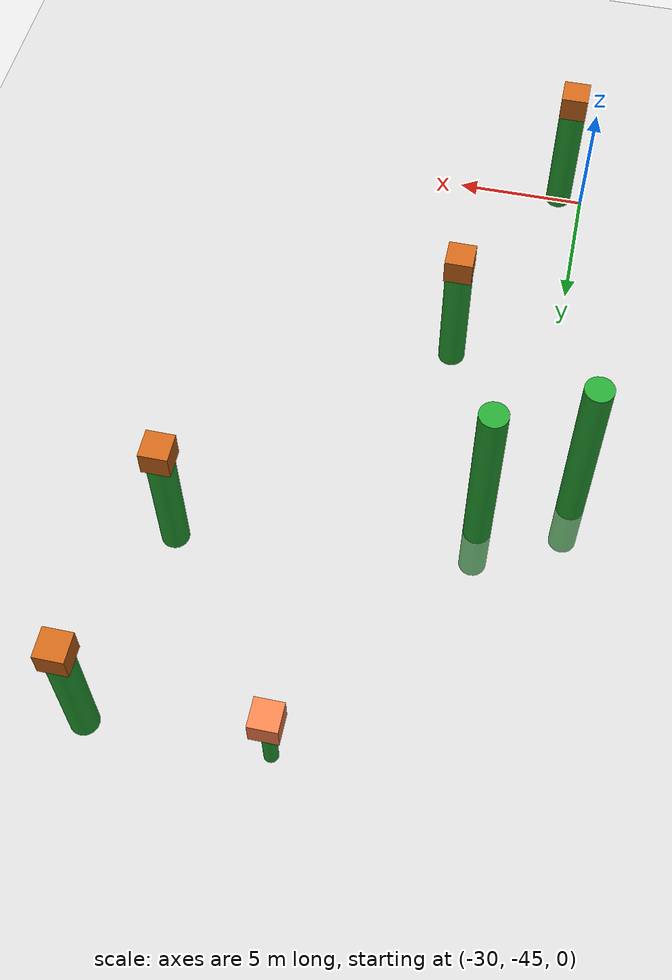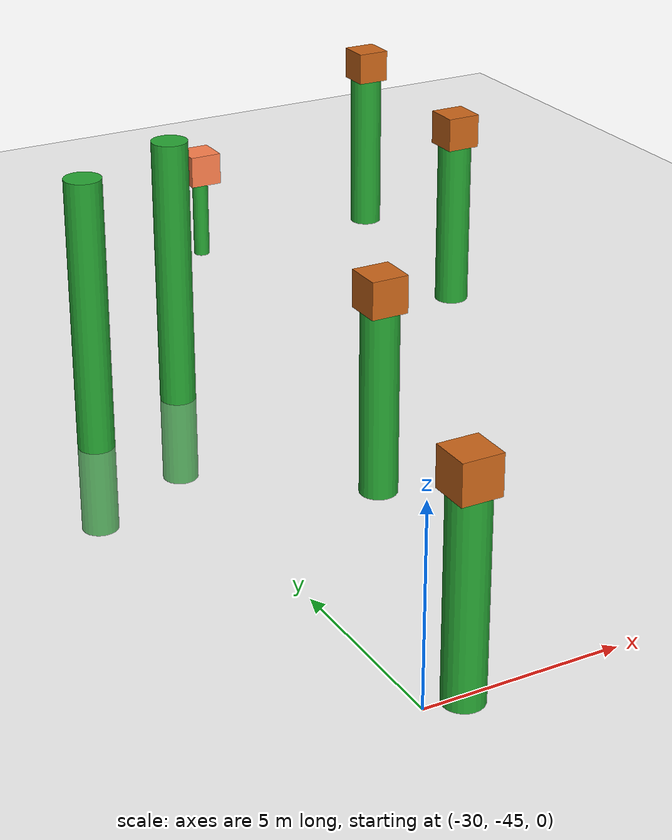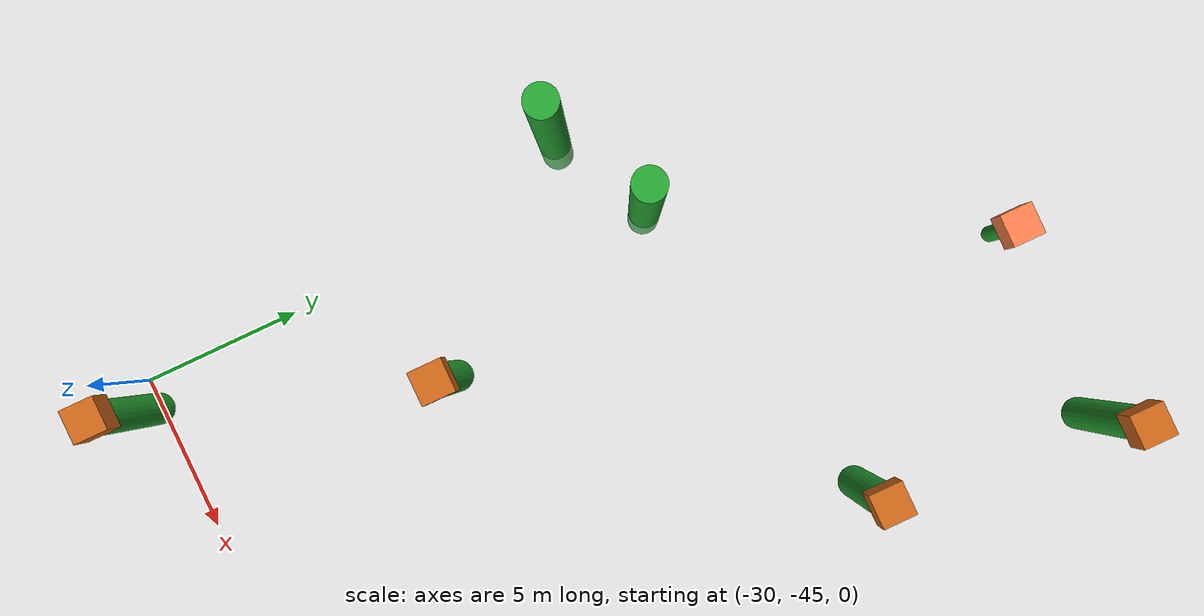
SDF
<sdf version="1.7">
 <world name="default">
  <model name="ground_plane">
   <static>1</static>
   <link name="link">
    <collision name="collision">
     <geometry><plane><normal>0 0 1</normal><size>100 100</size></plane></geometry>
     <surface>
      <contact><collide_bitmask>65535</collide_bitmask></contact>
      <friction><ode><mu>100</mu><mu2>50</mu2></ode></friction>
     </surface>
    </collision>
    <visual name="visual">
     <cast_shadows>0</cast_shadows>
     <geometry><plane><normal>0 0 1</normal><size>100 100</size></plane></geometry>
     <material>
      <script><uri>file://media/materials/scripts/gazebo.material</uri><name>Gazebo/Grey</name></script>
     </material>
    </visual>
   </link>
  </model>
  <model name="unit_cylinder_green_2_clone_clone_28">
   <link name="link">
    <inertial>
     <mass>1</mass>
     <inertia><ixx>0.145833</ixx><ixy>0</ixy><ixz>0</ixz><iyy>0.145833</iyy><iyz>0</iyz><izz>0.125</izz></inertia>
    </inertial>
    <visual name="visual">
     <geometry><cylinder><radius>0.5</radius><length>10</length></cylinder></geometry>
     <material>
      <script><name>Gazebo/Green</name><uri>file://media/materials/scripts/gazebo.material</uri></script>
      <shader type="pixel"><normal_map>__default__</normal_map></shader>
      <ambient>0 1 0.3 1</ambient>
      <diffuse>0.7 0.7 0.7 1</diffuse>
      <specular>0.01 0.01 0.01 1</specular>
      <emissive>0 0 0 1</emissive>
     </material>
    </visual>
    <collision name="collision">
     <geometry><cylinder><radius>0.5</radius><length>5</length></cylinder></geometry>
     <surface>
      <friction>
       <ode><mu>1</mu><mu2>1</mu2><fdir1>0 0 0</fdir1><slip1>0</slip1><slip2>0</slip2></ode>
       <torsional>
        <coefficient>1</coefficient>
        <patch_radius>0</patch_radius>
        <surface_radius>0</surface_radius>
        <use_patch_radius>1</use_patch_radius>
        <ode><slip>0</slip></ode>
       </torsional>
      </friction>
      <bounce><restitution_coefficient>0</restitution_coefficient><threshold>1e+06</threshold></bounce>
      <contact>
       <collide_without_contact>0</collide_without_contact>
       <collide_without_contact_bitmask>1</collide_without_contact_bitmask>
       <collide_bitmask>1</collide_bitmask>
       <ode>
        <soft_cfm>0</soft_cfm>
        <soft_erp>0.2</soft_erp>
        <kp>1e+13</kp>
        <kd>1</kd>
        <max_vel>0.01</max_vel>
        <min_depth>0</min_depth>
       </ode>
       <bullet>
        <split_impulse>1</split_impulse>
        <split_impulse_penetration_threshold>-0.01</split_impulse_penetration_threshold>
        <soft_cfm>0</soft_cfm>
        <soft_erp>0.2</soft_erp>
        <kp>1e+13</kp>
        <kd>1</kd>
       </bullet>
      </contact>
     </surface>
    </collision>
   </link>
   <static>1</static>
   <pose>-31.3539 -30.433 2.5 0 0 -0.000967</pose>
  </model>
  <model name="unit_cylinder_green_2_clone_clone_28_clone">
   <link name="link">
    <inertial>
     <mass>1</mass>
     <inertia><ixx>0.145833</ixx><ixy>0</ixy><ixz>0</ixz><iyy>0.145833</iyy><iyz>0</iyz><izz>0.125</izz></inertia>
    </inertial>
    <visual name="visual">
     <geometry><cylinder><radius>0.5</radius><length>10</length></cylinder></geometry>
     <material>
      <script><name>Gazebo/Green</name><uri>file://media/materials/scripts/gazebo.material</uri></script>
      <shader type="pixel"><normal_map>__default__</normal_map></shader>
      <ambient>0 1 0.3 1</ambient>
      <diffuse>0.7 0.7 0.7 1</diffuse>
      <specular>0.01 0.01 0.01 1</specular>
      <emissive>0 0 0 1</emissive>
     </material>
    </visual>
    <collision name="collision">
     <geometry><cylinder><radius>0.5</radius><length>5</length></cylinder></geometry>
     <surface>
      <friction>
       <ode><mu>1</mu><mu2>1</mu2><fdir1>0 0 0</fdir1><slip1>0</slip1><slip2>0</slip2></ode>
       <torsional>
        <coefficient>1</coefficient>
        <patch_radius>0</patch_radius>
        <surface_radius>0</surface_radius>
        <use_patch_radius>1</use_patch_radius>
        <ode><slip>0</slip></ode>
       </torsional>
      </friction>
      <bounce><restitution_coefficient>0</restitution_coefficient><threshold>1e+06</threshold></bounce>
      <contact>
       <collide_without_contact>0</collide_without_contact>
       <collide_without_contact_bitmask>1</collide_without_contact_bitmask>
       <collide_bitmask>1</collide_bitmask>
       <ode>
        <soft_cfm>0</soft_cfm>
        <soft_erp>0.2</soft_erp>
        <kp>1e+13</kp>
        <kd>1</kd>
        <max_vel>0.01</max_vel>
        <min_depth>0</min_depth>
       </ode>
       <bullet>
        <split_impulse>1</split_impulse>
        <split_impulse_penetration_threshold>-0.01</split_impulse_penetration_threshold>
        <soft_cfm>0</soft_cfm>
        <soft_erp>0.2</soft_erp>
        <kp>1e+13</kp>
        <kd>1</kd>
       </bullet>
      </contact>
     </surface>
    </collision>
   </link>
   <static>1</static>
   <pose>-28.2325 -28.8046 2.5 0 0 -0.000956</pose>
  </model>
  <model name="unit_cylinder_green_2_clone_clone_3_clone_0_clone_0_clone_5">
   <link name="link">
    <inertial>
     <mass>1</mass>
     <inertia><ixx>0.145833</ixx><ixy>0</ixy><ixz>0</ixz><iyy>0.145833</iyy><iyz>0</iyz><izz>0.125</izz></inertia>
    </inertial>
    <visual name="visual">
     <geometry><cylinder><radius>0.5</radius><length>5</length></cylinder></geometry>
     <material>
      <script><name>Gazebo/Green</name><uri>file://media/materials/scripts/gazebo.material</uri></script>
      <shader type="pixel"><normal_map>__default__</normal_map></shader>
      <ambient>0 1 0.3 1</ambient>
      <diffuse>0.7 0.7 0.7 1</diffuse>
      <specular>0.01 0.01 0.01 1</specular>
      <emissive>0 0 0 1</emissive>
     </material>
    </visual>
    <collision name="collision">
     <geometry><cylinder><radius>0.5</radius><length>5</length></cylinder></geometry>
     <surface>
      <friction>
       <ode><mu>1</mu><mu2>1</mu2><fdir1>0 0 0</fdir1><slip1>0</slip1><slip2>0</slip2></ode>
       <torsional>
        <coefficient>1</coefficient>
        <patch_radius>0</patch_radius>
        <surface_radius>0</surface_radius>
        <use_patch_radius>1</use_patch_radius>
        <ode><slip>0</slip></ode>
       </torsional>
      </friction>
      <bounce><restitution_coefficient>0</restitution_coefficient><threshold>1e+06</threshold></bounce>
      <contact>
       <collide_without_contact>0</collide_without_contact>
       <collide_without_contact_bitmask>1</collide_without_contact_bitmask>
       <collide_bitmask>1</collide_bitmask>
       <ode>
        <soft_cfm>0</soft_cfm>
        <soft_erp>0.2</soft_erp>
        <kp>1e+13</kp>
        <kd>1</kd>
        <max_vel>0.01</max_vel>
        <min_depth>0</min_depth>
       </ode>
       <bullet>
        <split_impulse>1</split_impulse>
        <split_impulse_penetration_threshold>-0.01</split_impulse_penetration_threshold>
        <soft_cfm>0</soft_cfm>
        <soft_erp>0.2</soft_erp>
        <kp>1e+13</kp>
        <kd>1</kd>
       </bullet>
      </contact>
     </surface>
    </collision>
   </link>
   <link name="link_3">
    <inertial>
     <mass>1</mass>
     <inertia>
      <ixx>0.166667</ixx>
      <ixy>0</ixy>
      <ixz>0</ixz>
      <iyy>0.166667</iyy>
      <iyz>0</iyz>
      <izz>0.166667</izz>
     </inertia>
    </inertial>
    <pose>0 0 3 0 -0 0.000935</pose>
    <visual name="visual">
     <geometry><box><size>1 1 1</size></box></geometry>
     <material>
      <lighting>1</lighting>
      <script><uri>file://media/materials/scripts/gazebo.material</uri><name>Gazebo/Grey</name></script>
      <shader type="pixel"><normal_map>__default__</normal_map></shader>
      <ambient>0.8 0.4 0.1 1</ambient>
      <diffuse>0.7 0.7 0.7 1</diffuse>
      <specular>0.01 0.01 0.01 1</specular>
      <emissive>0 0 0 1</emissive>
     </material>
    </visual>
    <collision name="collision">
     <geometry><box><size>1 1 1</size></box></geometry>
     <surface>
      <friction>
       <ode><mu>1</mu><mu2>1</mu2><fdir1>0 0 0</fdir1><slip1>0</slip1><slip2>0</slip2></ode>
       <torsional>
        <coefficient>1</coefficient>
        <patch_radius>0</patch_radius>
        <surface_radius>0</surface_radius>
        <use_patch_radius>1</use_patch_radius>
        <ode><slip>0</slip></ode>
       </torsional>
      </friction>
      <bounce><restitution_coefficient>0</restitution_coefficient><threshold>1e+06</threshold></bounce>
      <contact>
       <collide_without_contact>0</collide_without_contact>
       <collide_without_contact_bitmask>1</collide_without_contact_bitmask>
       <collide_bitmask>1</collide_bitmask>
       <ode>
        <soft_cfm>0</soft_cfm>
        <soft_erp>0.2</soft_erp>
        <kp>1e+13</kp>
        <kd>1</kd>
        <max_vel>0.01</max_vel>
        <min_depth>0</min_depth>
       </ode>
       <bullet>
        <split_impulse>1</split_impulse>
        <split_impulse_penetration_threshold>-0.01</split_impulse_penetration_threshold>
        <soft_cfm>0</soft_cfm>
        <soft_erp>0.2</soft_erp>
        <kp>1e+13</kp>
        <kd>1</kd>
       </bullet>
      </contact>
     </surface>
    </collision>
   </link>
   <static>1</static>
   <pose>-16.8102 -19.2138 2.49999 0 0 -0.000935</pose>
  </model>
  <model name="unit_cylinder_green_2_clone_clone_3_clone_0_clone_0_clone_7">
   <link name="link">
    <inertial>
     <mass>1</mass>
     <inertia><ixx>0.145833</ixx><ixy>0</ixy><ixz>0</ixz><iyy>0.145833</iyy><iyz>0</iyz><izz>0.125</izz></inertia>
    </inertial>
    <visual name="visual">
     <geometry><cylinder><radius>0.5</radius><length>5</length></cylinder></geometry>
     <material>
      <script><name>Gazebo/Green</name><uri>file://media/materials/scripts/gazebo.material</uri></script>
      <shader type="pixel"><normal_map>__default__</normal_map></shader>
      <ambient>0 1 0.3 1</ambient>
      <diffuse>0.7 0.7 0.7 1</diffuse>
      <specular>0.01 0.01 0.01 1</specular>
      <emissive>0 0 0 1</emissive>
     </material>
    </visual>
    <collision name="collision">
     <geometry><cylinder><radius>0.5</radius><length>5</length></cylinder></geometry>
     <surface>
      <friction>
       <ode><mu>1</mu><mu2>1</mu2><fdir1>0 0 0</fdir1><slip1>0</slip1><slip2>0</slip2></ode>
       <torsional>
        <coefficient>1</coefficient>
        <patch_radius>0</patch_radius>
        <surface_radius>0</surface_radius>
        <use_patch_radius>1</use_patch_radius>
        <ode><slip>0</slip></ode>
       </torsional>
      </friction>
      <bounce><restitution_coefficient>0</restitution_coefficient><threshold>1e+06</threshold></bounce>
      <contact>
       <collide_without_contact>0</collide_without_contact>
       <collide_without_contact_bitmask>1</collide_without_contact_bitmask>
       <collide_bitmask>1</collide_bitmask>
       <ode>
        <soft_cfm>0</soft_cfm>
        <soft_erp>0.2</soft_erp>
        <kp>1e+13</kp>
        <kd>1</kd>
        <max_vel>0.01</max_vel>
        <min_depth>0</min_depth>
       </ode>
       <bullet>
        <split_impulse>1</split_impulse>
        <split_impulse_penetration_threshold>-0.01</split_impulse_penetration_threshold>
        <soft_cfm>0</soft_cfm>
        <soft_erp>0.2</soft_erp>
        <kp>1e+13</kp>
        <kd>1</kd>
       </bullet>
      </contact>
     </surface>
    </collision>
   </link>
   <link name="link_3">
    <inertial>
     <mass>1</mass>
     <inertia>
      <ixx>0.166667</ixx>
      <ixy>0</ixy>
      <ixz>0</ixz>
      <iyy>0.166667</iyy>
      <iyz>0</iyz>
      <izz>0.166667</izz>
     </inertia>
    </inertial>
    <pose>0 0 3 0 -0 0.000935</pose>
    <visual name="visual">
     <geometry><box><size>1 1 1</size></box></geometry>
     <material>
      <lighting>1</lighting>
      <script><uri>file://media/materials/scripts/gazebo.material</uri><name>Gazebo/Grey</name></script>
      <shader type="pixel"><normal_map>__default__</normal_map></shader>
      <ambient>0.8 0.4 0.1 1</ambient>
      <diffuse>0.7 0.7 0.7 1</diffuse>
      <specular>0.01 0.01 0.01 1</specular>
      <emissive>0 0 0 1</emissive>
     </material>
    </visual>
    <collision name="collision">
     <geometry><box><size>1 1 1</size></box></geometry>
     <surface>
      <friction>
       <ode><mu>1</mu><mu2>1</mu2><fdir1>0 0 0</fdir1><slip1>0</slip1><slip2>0</slip2></ode>
       <torsional>
        <coefficient>1</coefficient>
        <patch_radius>0</patch_radius>
        <surface_radius>0</surface_radius>
        <use_patch_radius>1</use_patch_radius>
        <ode><slip>0</slip></ode>
       </torsional>
      </friction>
      <bounce><restitution_coefficient>0</restitution_coefficient><threshold>1e+06</threshold></bounce>
      <contact>
       <collide_without_contact>0</collide_without_contact>
       <collide_without_contact_bitmask>1</collide_without_contact_bitmask>
       <collide_bitmask>1</collide_bitmask>
       <ode>
        <soft_cfm>0</soft_cfm>
        <soft_erp>0.2</soft_erp>
        <kp>1e+13</kp>
        <kd>1</kd>
        <max_vel>0.01</max_vel>
        <min_depth>0</min_depth>
       </ode>
       <bullet>
        <split_impulse>1</split_impulse>
        <split_impulse_penetration_threshold>-0.01</split_impulse_penetration_threshold>
        <soft_cfm>0</soft_cfm>
        <soft_erp>0.2</soft_erp>
        <kp>1e+13</kp>
        <kd>1</kd>
       </bullet>
      </contact>
     </surface>
    </collision>
   </link>
   <static>1</static>
   <pose>-17.8296 -26.4417 2.49999 0 0 -0.000935</pose>
  </model>
  <model name="unit_cylinder_green_2_clone_clone_3_clone_0_clone_0_clone_26">
   <link name="link">
    <inertial>
     <mass>1</mass>
     <inertia><ixx>0.145833</ixx><ixy>0</ixy><ixz>0</ixz><iyy>0.145833</iyy><iyz>0</iyz><izz>0.125</izz></inertia>
    </inertial>
    <visual name="visual">
     <geometry><cylinder><radius>0.5</radius><length>5</length></cylinder></geometry>
     <material>
      <script><name>Gazebo/Green</name><uri>file://media/materials/scripts/gazebo.material</uri></script>
      <shader type="pixel"><normal_map>__default__</normal_map></shader>
      <ambient>0 1 0.3 1</ambient>
      <diffuse>0.7 0.7 0.7 1</diffuse>
      <specular>0.01 0.01 0.01 1</specular>
      <emissive>0 0 0 1</emissive>
     </material>
    </visual>
    <collision name="collision">
     <geometry><cylinder><radius>0.5</radius><length>5</length></cylinder></geometry>
     <surface>
      <friction>
       <ode><mu>1</mu><mu2>1</mu2><fdir1>0 0 0</fdir1><slip1>0</slip1><slip2>0</slip2></ode>
       <torsional>
        <coefficient>1</coefficient>
        <patch_radius>0</patch_radius>
        <surface_radius>0</surface_radius>
        <use_patch_radius>1</use_patch_radius>
        <ode><slip>0</slip></ode>
       </torsional>
      </friction>
      <bounce><restitution_coefficient>0</restitution_coefficient><threshold>1e+06</threshold></bounce>
      <contact>
       <collide_without_contact>0</collide_without_contact>
       <collide_without_contact_bitmask>1</collide_without_contact_bitmask>
       <collide_bitmask>1</collide_bitmask>
       <ode>
        <soft_cfm>0</soft_cfm>
        <soft_erp>0.2</soft_erp>
        <kp>1e+13</kp>
        <kd>1</kd>
        <max_vel>0.01</max_vel>
        <min_depth>0</min_depth>
       </ode>
       <bullet>
        <split_impulse>1</split_impulse>
        <split_impulse_penetration_threshold>-0.01</split_impulse_penetration_threshold>
        <soft_cfm>0</soft_cfm>
        <soft_erp>0.2</soft_erp>
        <kp>1e+13</kp>
        <kd>1</kd>
       </bullet>
      </contact>
     </surface>
    </collision>
   </link>
   <link name="link_3">
    <inertial>
     <mass>1</mass>
     <inertia>
      <ixx>0.166667</ixx>
      <ixy>0</ixy>
      <ixz>0</ixz>
      <iyy>0.166667</iyy>
      <iyz>0</iyz>
      <izz>0.166667</izz>
     </inertia>
    </inertial>
    <pose>0 0 3 0 -0 0.000935</pose>
    <visual name="visual">
     <geometry><box><size>1 1 1</size></box></geometry>
     <material>
      <lighting>1</lighting>
      <script><uri>file://media/materials/scripts/gazebo.material</uri><name>Gazebo/Grey</name></script>
      <shader type="pixel"><normal_map>__default__</normal_map></shader>
      <ambient>0.8 0.4 0.1 1</ambient>
      <diffuse>0.7 0.7 0.7 1</diffuse>
      <specular>0.01 0.01 0.01 1</specular>
      <emissive>0 0 0 1</emissive>
     </material>
    </visual>
    <collision name="collision">
     <geometry><box><size>1 1 1</size></box></geometry>
     <surface>
      <friction>
       <ode><mu>1</mu><mu2>1</mu2><fdir1>0 0 0</fdir1><slip1>0</slip1><slip2>0</slip2></ode>
       <torsional>
        <coefficient>1</coefficient>
        <patch_radius>0</patch_radius>
        <surface_radius>0</surface_radius>
        <use_patch_radius>1</use_patch_radius>
        <ode><slip>0</slip></ode>
       </torsional>
      </friction>
      <bounce><restitution_coefficient>0</restitution_coefficient><threshold>1e+06</threshold></bounce>
      <contact>
       <collide_without_contact>0</collide_without_contact>
       <collide_without_contact_bitmask>1</collide_without_contact_bitmask>
       <collide_bitmask>1</collide_bitmask>
       <ode>
        <soft_cfm>0</soft_cfm>
        <soft_erp>0.2</soft_erp>
        <kp>1e+13</kp>
        <kd>1</kd>
        <max_vel>0.01</max_vel>
        <min_depth>0</min_depth>
       </ode>
       <bullet>
        <split_impulse>1</split_impulse>
        <split_impulse_penetration_threshold>-0.01</split_impulse_penetration_threshold>
        <soft_cfm>0</soft_cfm>
        <soft_erp>0.2</soft_erp>
        <kp>1e+13</kp>
        <kd>1</kd>
       </bullet>
      </contact>
     </surface>
    </collision>
   </link>
   <static>1</static>
   <pose>-26.0546 -36.243 2.49999 0 0 -0.000935</pose>
  </model>
  <model name="unit_cylinder_green_2_clone_clone_3_clone_0_clone_0_clone_27">
   <link name="link">
    <inertial>
     <mass>1</mass>
     <inertia><ixx>0.145833</ixx><ixy>0</ixy><ixz>0</ixz><iyy>0.145833</iyy><iyz>0</iyz><izz>0.125</izz></inertia>
    </inertial>
    <visual name="visual">
     <geometry><cylinder><radius>0.5</radius><length>5</length></cylinder></geometry>
     <material>
      <script><name>Gazebo/Green</name><uri>file://media/materials/scripts/gazebo.material</uri></script>
      <shader type="pixel"><normal_map>__default__</normal_map></shader>
      <ambient>0 1 0.3 1</ambient>
      <diffuse>0.7 0.7 0.7 1</diffuse>
      <specular>0.01 0.01 0.01 1</specular>
      <emissive>0 0 0 1</emissive>
     </material>
    </visual>
    <collision name="collision">
     <geometry><cylinder><radius>0.5</radius><length>5</length></cylinder></geometry>
     <surface>
      <friction>
       <ode><mu>1</mu><mu2>1</mu2><fdir1>0 0 0</fdir1><slip1>0</slip1><slip2>0</slip2></ode>
       <torsional>
        <coefficient>1</coefficient>
        <patch_radius>0</patch_radius>
        <surface_radius>0</surface_radius>
        <use_patch_radius>1</use_patch_radius>
        <ode><slip>0</slip></ode>
       </torsional>
      </friction>
      <bounce><restitution_coefficient>0</restitution_coefficient><threshold>1e+06</threshold></bounce>
      <contact>
       <collide_without_contact>0</collide_without_contact>
       <collide_without_contact_bitmask>1</collide_without_contact_bitmask>
       <collide_bitmask>1</collide_bitmask>
       <ode>
        <soft_cfm>0</soft_cfm>
        <soft_erp>0.2</soft_erp>
        <kp>1e+13</kp>
        <kd>1</kd>
        <max_vel>0.01</max_vel>
        <min_depth>0</min_depth>
       </ode>
       <bullet>
        <split_impulse>1</split_impulse>
        <split_impulse_penetration_threshold>-0.01</split_impulse_penetration_threshold>
        <soft_cfm>0</soft_cfm>
        <soft_erp>0.2</soft_erp>
        <kp>1e+13</kp>
        <kd>1</kd>
       </bullet>
      </contact>
     </surface>
    </collision>
   </link>
   <link name="link_3">
    <inertial>
     <mass>1</mass>
     <inertia>
      <ixx>0.166667</ixx>
      <ixy>0</ixy>
      <ixz>0</ixz>
      <iyy>0.166667</iyy>
      <iyz>0</iyz>
      <izz>0.166667</izz>
     </inertia>
    </inertial>
    <pose>0 0 3 0 -0 0.000935</pose>
    <visual name="visual">
     <geometry><box><size>1 1 1</size></box></geometry>
     <material>
      <lighting>1</lighting>
      <script><uri>file://media/materials/scripts/gazebo.material</uri><name>Gazebo/Grey</name></script>
      <shader type="pixel"><normal_map>__default__</normal_map></shader>
      <ambient>0.8 0.4 0.1 1</ambient>
      <diffuse>0.7 0.7 0.7 1</diffuse>
      <specular>0.01 0.01 0.01 1</specular>
      <emissive>0 0 0 1</emissive>
     </material>
    </visual>
    <collision name="collision">
     <geometry><box><size>1 1 1</size></box></geometry>
     <surface>
      <friction>
       <ode><mu>1</mu><mu2>1</mu2><fdir1>0 0 0</fdir1><slip1>0</slip1><slip2>0</slip2></ode>
       <torsional>
        <coefficient>1</coefficient>
        <patch_radius>0</patch_radius>
        <surface_radius>0</surface_radius>
        <use_patch_radius>1</use_patch_radius>
        <ode><slip>0</slip></ode>
       </torsional>
      </friction>
      <bounce><restitution_coefficient>0</restitution_coefficient><threshold>1e+06</threshold></bounce>
      <contact>
       <collide_without_contact>0</collide_without_contact>
       <collide_without_contact_bitmask>1</collide_without_contact_bitmask>
       <collide_bitmask>1</collide_bitmask>
       <ode>
        <soft_cfm>0</soft_cfm>
        <soft_erp>0.2</soft_erp>
        <kp>1e+13</kp>
        <kd>1</kd>
        <max_vel>0.01</max_vel>
        <min_depth>0</min_depth>
       </ode>
       <bullet>
        <split_impulse>1</split_impulse>
        <split_impulse_penetration_threshold>-0.01</split_impulse_penetration_threshold>
        <soft_cfm>0</soft_cfm>
        <soft_erp>0.2</soft_erp>
        <kp>1e+13</kp>
        <kd>1</kd>
       </bullet>
      </contact>
     </surface>
    </collision>
   </link>
   <static>1</static>
   <pose>-29.0749 -45.1213 2.49999 0 0 -0.000935</pose>
  </model>
  <model name="unit_cylinder_green_2_clone_clone_3_clone_0_clone_0_clone_54">
   <link name="link">
    <inertial>
     <mass>1</mass>
     <inertia><ixx>0.145833</ixx><ixy>0</ixy><ixz>0</ixz><iyy>0.145833</iyy><iyz>0</iyz><izz>0.125</izz></inertia>
    </inertial>
    <pose>0 0 -1.25 0 -0 0</pose>
    <visual name="visual">
     <geometry><cylinder><radius>0.25</radius><length>2.5</length></cylinder></geometry>
     <material>
      <script><name>Gazebo/Green</name><uri>file://media/materials/scripts/gazebo.material</uri></script>
      <shader type="pixel"><normal_map>__default__</normal_map></shader>
      <ambient>0 1 0.3 1</ambient>
      <diffuse>0.7 0.7 0.7 1</diffuse>
      <specular>0.01 0.01 0.01 1</specular>
      <emissive>0 0 0 1</emissive>
     </material>
    </visual>
    <collision name="collision">
     <geometry><cylinder><radius>0.5</radius><length>5</length></cylinder></geometry>
     <surface>
      <friction>
       <ode><mu>1</mu><mu2>1</mu2><fdir1>0 0 0</fdir1><slip1>0</slip1><slip2>0</slip2></ode>
       <torsional>
        <coefficient>1</coefficient>
        <patch_radius>0</patch_radius>
        <surface_radius>0</surface_radius>
        <use_patch_radius>1</use_patch_radius>
        <ode><slip>0</slip></ode>
       </torsional>
      </friction>
      <bounce><restitution_coefficient>0</restitution_coefficient><threshold>1e+06</threshold></bounce>
      <contact>
       <collide_without_contact>0</collide_without_contact>
       <collide_without_contact_bitmask>1</collide_without_contact_bitmask>
       <collide_bitmask>1</collide_bitmask>
       <ode>
        <soft_cfm>0</soft_cfm>
        <soft_erp>0.2</soft_erp>
        <kp>1e+13</kp>
        <kd>1</kd>
        <max_vel>0.01</max_vel>
        <min_depth>0</min_depth>
       </ode>
       <bullet>
        <split_impulse>1</split_impulse>
        <split_impulse_penetration_threshold>-0.01</split_impulse_penetration_threshold>
        <soft_cfm>0</soft_cfm>
        <soft_erp>0.2</soft_erp>
        <kp>1e+13</kp>
        <kd>1</kd>
       </bullet>
      </contact>
     </surface>
    </collision>
   </link>
   <link name="link_3">
    <inertial>
     <mass>1</mass>
     <inertia>
      <ixx>0.166667</ixx>
      <ixy>0</ixy>
      <ixz>0</ixz>
      <iyy>0.166667</iyy>
      <iyz>0</iyz>
      <izz>0.166667</izz>
     </inertia>
    </inertial>
    <pose>0 0 0.5 0 -0 0.000935</pose>
    <visual name="visual">
     <geometry><box><size>1 1 1</size></box></geometry>
     <material>
      <lighting>1</lighting>
      <script><uri>file://media/materials/scripts/gazebo.material</uri><name>Gazebo/Grey</name></script>
      <shader type="pixel"><normal_map>__default__</normal_map></shader>
      <ambient>1 0.5 0.3 1</ambient>
      <diffuse>0.7 0.7 0.7 1</diffuse>
      <specular>0.01 0.01 0.01 1</specular>
      <emissive>0 0 0 1</emissive>
     </material>
    </visual>
    <collision name="collision">
     <geometry><box><size>1 1 1</size></box></geometry>
     <surface>
      <friction>
       <ode><mu>1</mu><mu2>1</mu2><fdir1>0 0 0</fdir1><slip1>0</slip1><slip2>0</slip2></ode>
       <torsional>
        <coefficient>1</coefficient>
        <patch_radius>0</patch_radius>
        <surface_radius>0</surface_radius>
        <use_patch_radius>1</use_patch_radius>
        <ode><slip>0</slip></ode>
       </torsional>
      </friction>
      <bounce><restitution_coefficient>0</restitution_coefficient><threshold>1e+06</threshold></bounce>
      <contact>
       <collide_without_contact>0</collide_without_contact>
       <collide_without_contact_bitmask>1</collide_without_contact_bitmask>
       <collide_bitmask>1</collide_bitmask>
       <ode>
        <soft_cfm>0</soft_cfm>
        <soft_erp>0.2</soft_erp>
        <kp>1e+13</kp>
        <kd>1</kd>
        <max_vel>0.01</max_vel>
        <min_depth>0</min_depth>
       </ode>
       <bullet>
        <split_impulse>1</split_impulse>
        <split_impulse_penetration_threshold>-0.01</split_impulse_penetration_threshold>
        <soft_cfm>0</soft_cfm>
        <soft_erp>0.2</soft_erp>
        <kp>1e+13</kp>
        <kd>1</kd>
       </bullet>
      </contact>
     </surface>
    </collision>
   </link>
   <static>1</static>
   <pose>-23.0435 -19.336 2.49999 0 0 -0.000935</pose>
  </model>
 </world>
</sdf>
